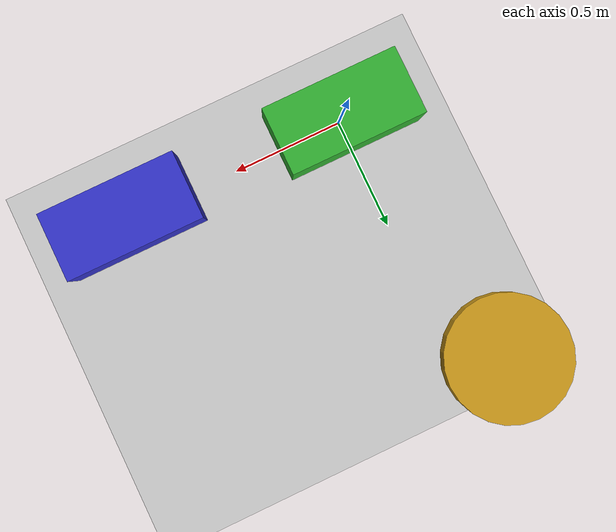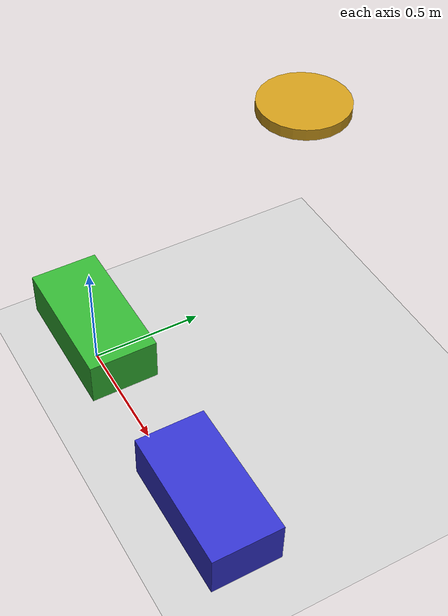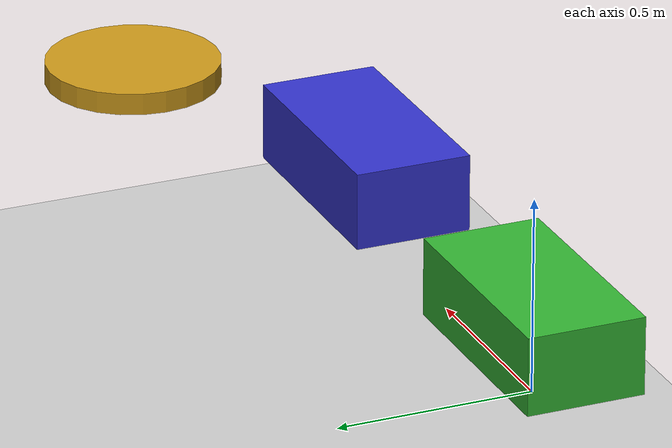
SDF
<?xml version="1.0" ?>
<sdf version="1.6">
  <world name="multi_robot">
    <include>
      <uri>model://ground_plane</uri>
    </include>
    <include>
      <uri>model://sun</uri>
    </include>

    <include>
      <uri>model://dog1</uri>
      <name>dog1</name>
      <pose>0 0 0.1 0 0 0</pose>
    </include>

    <include>
      <uri>model://dog2</uri>
      <name>dog2</name>
      <pose>1 0 0.1 0 0 0</pose>
    </include>

    <include>
      <uri>model://uav1</uri>
      <name>uav1</name>
      <pose>0 1 1.0 0 0 0</pose>
    </include>
  </world>
</sdf>

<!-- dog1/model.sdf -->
<sdf version="1.6">
  <model name="dog1">
    <static>false</static>
    <link name="base_link">
      <pose>0 0 0.1 0 0 0</pose>
      <inertial>
        <mass>10.0</mass>
        <inertia>
          <ixx>0.1</ixx><iyy>0.1</iyy><izz>0.1</izz>
          <ixy>0</ixy><ixz>0</ixz><iyz>0</iyz>
        </inertia>
      </inertial>
      <collision name="collision">
        <geometry>
          <box><size>0.6 0.3 0.2</size></box>
        </geometry>
      </collision>
      <visual name="visual">
        <geometry>
          <box><size>0.6 0.3 0.2</size></box>
        </geometry>
        <material>
          <ambient>0.2 0.7 0.2 1</ambient>
          <diffuse>0.2 0.7 0.2 1</diffuse>
        </material>
      </visual>
    </link>
  </model>
</sdf>

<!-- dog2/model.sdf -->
<sdf version="1.6">
  <model name="dog2">
    <static>false</static>
    <link name="base_link">
      <pose>0 0 0.1 0 0 0</pose>
      <inertial>
        <mass>10.0</mass>
        <inertia>
          <ixx>0.1</ixx><iyy>0.1</iyy><izz>0.1</izz>
          <ixy>0</ixy><ixz>0</ixz><iyz>0</iyz>
        </inertia>
      </inertial>
      <collision name="collision">
        <geometry>
          <box><size>0.6 0.3 0.2</size></box>
        </geometry>
      </collision>
      <visual name="visual">
        <geometry>
          <box><size>0.6 0.3 0.2</size></box>
        </geometry>
        <material>
          <ambient>0.2 0.2 0.8 1</ambient>
          <diffuse>0.2 0.2 0.8 1</diffuse>
        </material>
      </visual>
    </link>
  </model>
</sdf>

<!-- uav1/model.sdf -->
<sdf version="1.6">
  <model name="uav1">
    <static>false</static>
    <link name="base_link">
      <pose>0 0 0 0 0 0</pose>
      <inertial>
        <mass>3.0</mass>
        <inertia>
          <ixx>0.05</ixx><iyy>0.05</iyy><izz>0.08</izz>
          <ixy>0</ixy><ixz>0</ixz><iyz>0</iyz>
        </inertia>
      </inertial>
      <collision name="collision">
        <geometry>
          <cylinder><radius>0.2</radius><length>0.05</length></cylinder>
        </geometry>
      </collision>
      <visual name="visual">
        <geometry>
          <cylinder><radius>0.2</radius><length>0.05</length></cylinder>
        </geometry>
        <material>
          <ambient>0.8 0.6 0.1 1</ambient>
          <diffuse>0.8 0.6 0.1 1</diffuse>
        </material>
      </visual>
    </link>
  </model>
</sdf>
